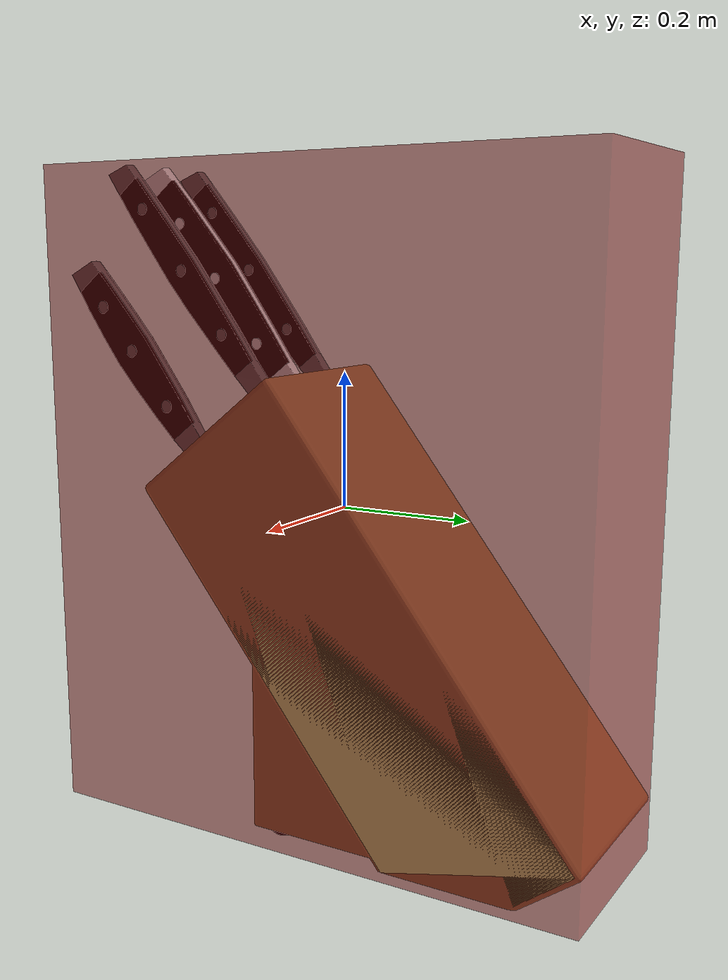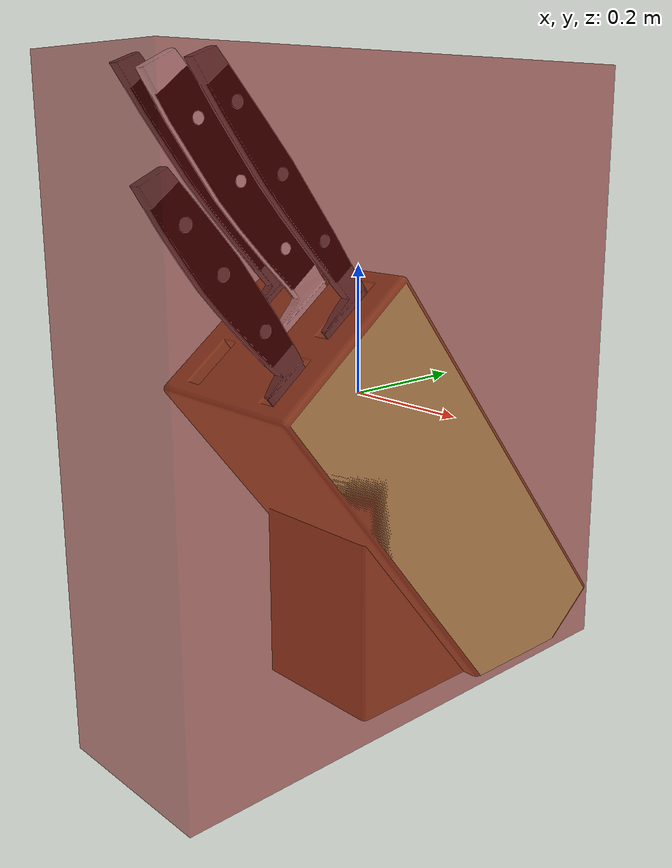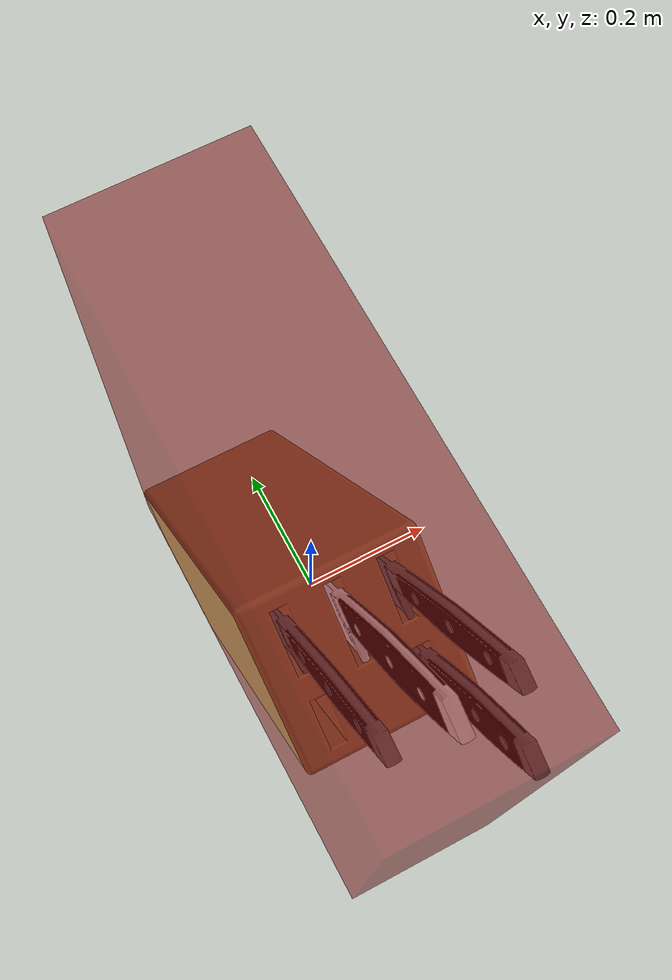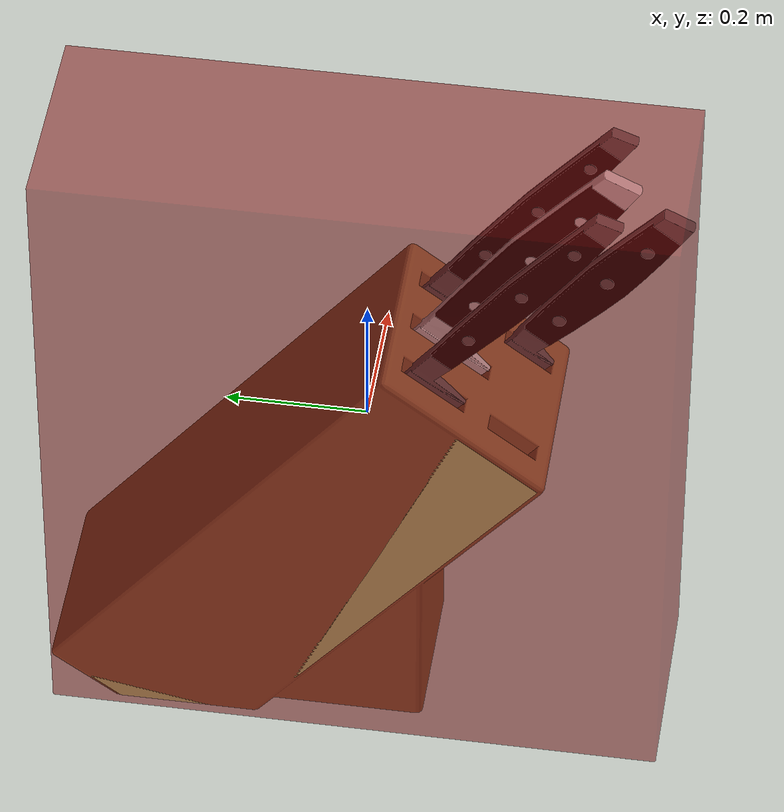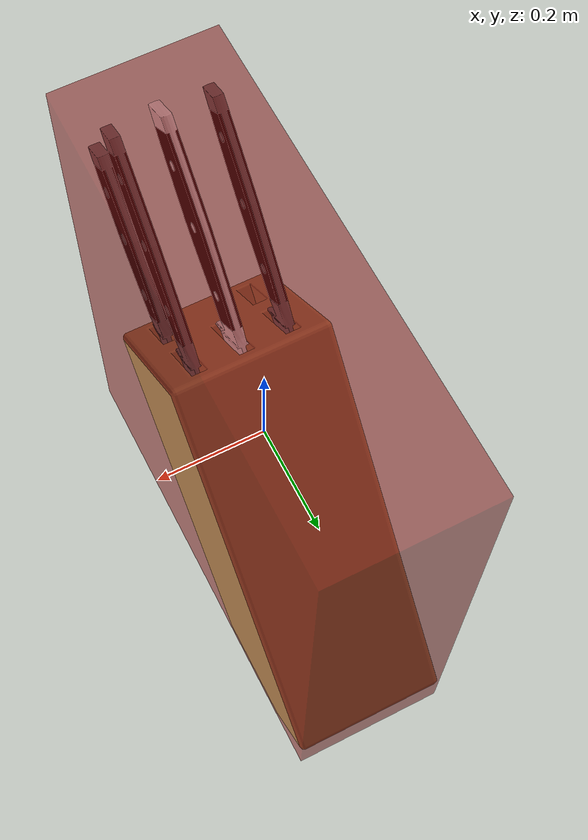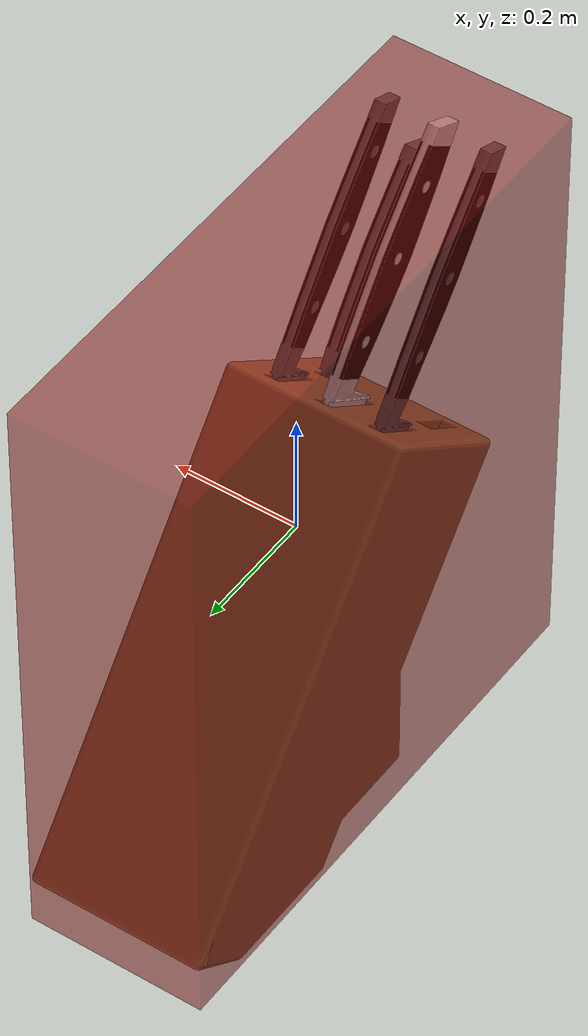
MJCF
<mujoco model="model">
  <asset>
    <texture file="visuals/material_0.png" name="tex-model" type="2d"/>
    <texture type="2d" name="image0" file="visuals/image0.png"/>
    <material name="model" reflectance="0.5" texrepeat="1 1" texture="tex-model" texuniform="false"/>
    <material name="blackbase.001" specular="0.5" shininess="0.0" rgba="0.014444 0.014444 0.014444 1.0"/>
    <material name="knifeblade.002" specular="0.5" shininess="0.64" rgba="1.000000 1.000000 1.000000 1.0"/>
    <material name="knifeblade.003" specular="0.5" shininess="0.49623217799999997" rgba="0.420397 0.420397 0.420397 1.0"/>
    <material name="knifeblock_wood.001" texture="image0" specular="0.5" shininess="0.159999985"/>
    <material name="knifehandle.002" specular="0.5" shininess="0.81" rgba="0.014444 0.014444 0.014444 1.0"/>
    <material name="knifehandle.003" specular="0.5" shininess="0.81" rgba="0.014444 0.014444 0.014444 1.0"/>
    <mesh file="visuals/model_0.obj" name="model_0_vis" scale="1 1 1"/>
    <mesh file="visuals/model_1.obj" name="model_1_vis" scale="1 1 1"/>
    <mesh file="visuals/model_2.obj" name="model_2_vis" scale="1 1 1"/>
    <mesh file="visuals/model_3.obj" name="model_3_vis" scale="1 1 1"/>
    <mesh file="visuals/model_4.obj" name="model_4_vis" scale="1 1 1"/>
    <mesh file="visuals/model_5.obj" name="model_5_vis" scale="1 1 1"/>
  </asset>
  <default>
    <default class="visual">
      <geom conaffinity="0" contype="0" group="1" type="mesh"/>
    </default>
    <default class="collision">
      <geom group="0" rgba="0.5 0 0 0.5"/>
    </default>
    <default class="region">
      <geom group="1" conaffinity="0" contype="0" rgba="0 1 0 0"/>
    </default>
  </default>
  <worldbody>
    <body>
      <!-- exterior bounding box points -->
      <!-- interior bounding box points -->
      <body name="object">
        <geom solimp="0.998 0.998 0.001" solref="0.001 1" density="100" friction="0.95 0.3 0.1" type="mesh" mesh="model_0_vis" material="knifehandle.003" class="visual"/>
        <geom solimp="0.998 0.998 0.001" solref="0.001 1" density="100" friction="0.95 0.3 0.1" type="mesh" mesh="model_1_vis" material="knifeblade.003" class="visual"/>
        <geom solimp="0.998 0.998 0.001" solref="0.001 1" density="100" friction="0.95 0.3 0.1" type="mesh" mesh="model_2_vis" material="blackbase.001" class="visual"/>
        <geom solimp="0.998 0.998 0.001" solref="0.001 1" density="100" friction="0.95 0.3 0.1" type="mesh" mesh="model_3_vis" material="knifeblock_wood.001" class="visual"/>
        <geom solimp="0.998 0.998 0.001" solref="0.001 1" density="100" friction="0.95 0.3 0.1" type="mesh" mesh="model_4_vis" material="knifehandle.002" class="visual"/>
        <geom solimp="0.998 0.998 0.001" solref="0.001 1" density="100" friction="0.95 0.3 0.1" type="mesh" mesh="model_5_vis" material="knifeblade.002" class="visual"/>
        <geom class="collision" type="box" pos="0 0 0" size="0.1442335429527491 0.4376478393815265 0.5"/>
        <geom class="region" name="reg_main" type="box" pos="0.0 0.0 0.0" size="0.1442335429527491 0.4376478393815265 0.5"/>
      </body>
    </body>
  </worldbody>
</mujoco>
